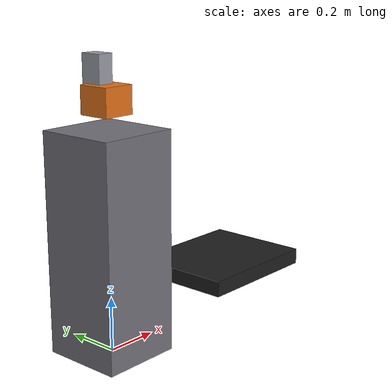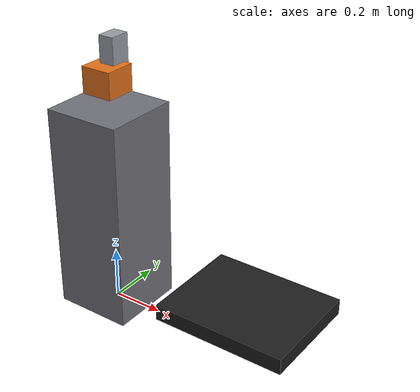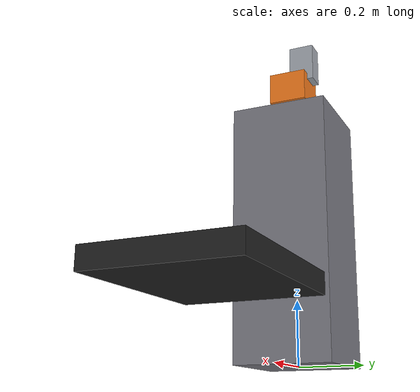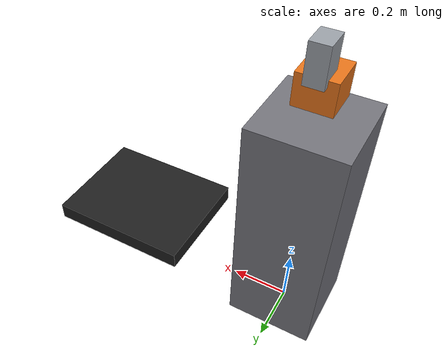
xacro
<?xml version="1.0"?>
<robot xmlns:xacro="http://www.ros.org/wiki/xacro" name="industrial_cell">
  <xacro:arg name="controllers_yaml" default=""/>

  <link name="world"/>

  <!-- Fixed base / arm column -->
  <link name="base_link">
    <visual>
      <origin xyz="0 0 0.4"/>
      <geometry><box size="0.3 0.3 0.8"/></geometry>
      <material name="grey"><color rgba="0.45 0.45 0.48 1"/></material>
    </visual>
    <collision>
      <origin xyz="0 0 0.4"/>
      <geometry><box size="0.3 0.3 0.8"/></geometry>
    </collision>
    <inertial>
      <origin xyz="0 0 0.4"/>
      <mass value="40"/>
      <inertia ixx="2.5" ixy="0" ixz="0" iyy="2.5" iyz="0" izz="1.5"/>
    </inertial>
  </link>

  <!-- Prismatic TCP slide (maps /UE_TCP_position.x) -->
  <link name="tcp_link">
    <visual>
      <origin xyz="0 0 0.05"/>
      <geometry><box size="0.12 0.12 0.1"/></geometry>
      <material name="orange"><color rgba="0.9 0.45 0.1 1"/></material>
    </visual>
    <collision>
      <origin xyz="0 0 0.05"/>
      <geometry><box size="0.12 0.12 0.1"/></geometry>
    </collision>
    <inertial>
      <origin xyz="0 0 0.05"/>
      <mass value="2"/>
      <inertia ixx="0.02" ixy="0" ixz="0" iyy="0.02" iyz="0" izz="0.02"/>
    </inertial>
  </link>

  <!-- Conveyor belt roller (maps RESUME motion along line) -->
  <link name="conveyor_link">
    <visual>
      <origin xyz="0 0 0.03"/>
      <geometry><box size="0.5 0.4 0.06"/></geometry>
      <material name="dark"><color rgba="0.12 0.12 0.12 1"/></material>
    </visual>
    <collision>
      <origin xyz="0 0 0.03"/>
      <geometry><box size="0.5 0.4 0.06"/></geometry>
    </collision>
    <inertial>
      <origin xyz="0 0 0.03"/>
      <mass value="5"/>
      <inertia ixx="0.1" ixy="0" ixz="0" iyy="0.1" iyz="0" izz="0.1"/>
    </inertial>
  </link>

  <!-- Parallel gripper finger -->
  <link name="gripper_finger">
    <visual>
      <origin xyz="0 0.04 0.04"/>
      <geometry><box size="0.06 0.08 0.12"/></geometry>
      <material name="steel"><color rgba="0.6 0.62 0.65 1"/></material>
    </visual>
    <collision>
      <origin xyz="0 0.04 0.04"/>
      <geometry><box size="0.06 0.08 0.12"/></geometry>
    </collision>
    <inertial>
      <origin xyz="0 0.04 0.04"/>
      <mass value="0.5"/>
      <inertia ixx="0.001" ixy="0" ixz="0" iyy="0.001" iyz="0" izz="0.001"/>
    </inertial>
  </link>

  <joint name="world_to_base" type="fixed">
    <origin xyz="0 0 0" rpy="0 0 0"/>
    <parent link="world"/>
    <child link="base_link"/>
  </joint>

  <joint name="arm_slide_joint" type="prismatic">
    <parent link="base_link"/>
    <child link="tcp_link"/>
    <origin xyz="0 0 0.85" rpy="0 0 0"/>
    <axis xyz="1 0 0"/>
    <limit lower="0.0" upper="1.0" effort="200" velocity="0.5"/>
  </joint>

  <joint name="conveyor_joint" type="revolute">
    <parent link="base_link"/>
    <child link="conveyor_link"/>
    <origin xyz="0.6 0 0.15" rpy="0 0 0"/>
    <axis xyz="0 1 0"/>
    <limit lower="-6.28" upper="6.28" effort="50" velocity="2.0"/>
  </joint>

  <joint name="gripper_joint" type="prismatic">
    <parent link="tcp_link"/>
    <child link="gripper_finger"/>
    <origin xyz="0 0 0.1" rpy="0 0 0"/>
    <axis xyz="0 1 0"/>
    <limit lower="0.0" upper="0.08" effort="30" velocity="0.3"/>
  </joint>

  <ros2_control name="GazeboSimSystem" type="system">
    <hardware>
      <plugin>gz_ros2_control/GazeboSimSystem</plugin>
    </hardware>
    <joint name="arm_slide_joint">
      <command_interface name="position">
        <param name="min">0.0</param>
        <param name="max">1.0</param>
      </command_interface>
      <state_interface name="position">
        <param name="initial_value">0.2</param>
      </state_interface>
      <state_interface name="velocity"/>
    </joint>
    <joint name="conveyor_joint">
      <command_interface name="position">
        <param name="min">-6.28</param>
        <param name="max">6.28</param>
      </command_interface>
      <state_interface name="position">
        <param name="initial_value">0.0</param>
      </state_interface>
      <state_interface name="velocity"/>
    </joint>
    <joint name="gripper_joint">
      <command_interface name="position">
        <param name="min">0.0</param>
        <param name="max">0.08</param>
      </command_interface>
      <state_interface name="position">
        <param name="initial_value">0.04</param>
      </state_interface>
      <state_interface name="velocity"/>
    </joint>
  </ros2_control>

  <gazebo>
    <plugin filename="gz_ros2_control-system" name="gz_ros2_control::GazeboSimROS2ControlPlugin">
      <parameters>$(arg controllers_yaml)</parameters>
    </plugin>
  </gazebo>
</robot>
